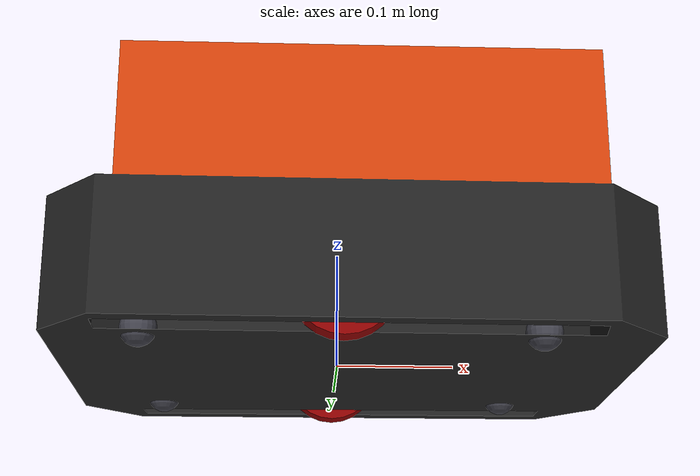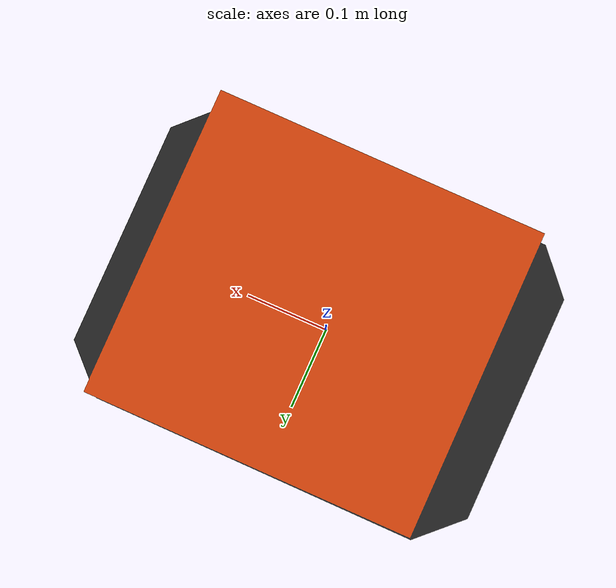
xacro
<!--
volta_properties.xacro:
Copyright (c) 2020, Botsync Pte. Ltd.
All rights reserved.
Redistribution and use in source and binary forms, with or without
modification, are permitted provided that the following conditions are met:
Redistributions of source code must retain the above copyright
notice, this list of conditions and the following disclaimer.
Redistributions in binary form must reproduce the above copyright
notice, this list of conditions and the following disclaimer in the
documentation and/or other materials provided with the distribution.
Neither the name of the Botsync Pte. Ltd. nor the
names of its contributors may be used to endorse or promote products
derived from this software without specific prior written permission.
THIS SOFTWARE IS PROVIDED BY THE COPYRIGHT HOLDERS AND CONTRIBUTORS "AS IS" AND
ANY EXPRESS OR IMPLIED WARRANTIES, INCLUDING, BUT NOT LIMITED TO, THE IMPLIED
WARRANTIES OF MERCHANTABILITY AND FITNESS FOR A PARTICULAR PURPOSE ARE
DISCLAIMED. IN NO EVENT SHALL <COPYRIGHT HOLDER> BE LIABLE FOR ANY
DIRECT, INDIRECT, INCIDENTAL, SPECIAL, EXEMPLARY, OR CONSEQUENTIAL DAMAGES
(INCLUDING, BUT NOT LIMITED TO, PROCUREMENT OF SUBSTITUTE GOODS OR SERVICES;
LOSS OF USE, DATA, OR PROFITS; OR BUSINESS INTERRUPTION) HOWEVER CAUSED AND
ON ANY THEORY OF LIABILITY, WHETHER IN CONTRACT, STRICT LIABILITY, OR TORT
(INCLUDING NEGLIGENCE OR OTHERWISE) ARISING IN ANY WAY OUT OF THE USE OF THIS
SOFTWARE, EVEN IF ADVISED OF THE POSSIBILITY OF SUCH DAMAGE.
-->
<?xml version="1.0"?>

<robot name="volta_robot" xmlns:xacro="https://ros.org/wiki/xacro">

  <link name="base_footprint"/>
  <xacro:include filename="$(find volta_description)/urdf/volta.urdf.xacro" />
  <xacro:volta_robot x="0.5" y="-0.5" yaw="0.0" joint_prefix="bot_1"/>
  <xacro:volta_robot x="0.5" y="0.5" yaw="0.0" joint_prefix="bot_2"/>

  <joint name="bot_1_base_joint" type="fixed">
    <parent link="base_footprint"/>
    <child link="bot_1/base_link"/>
  </joint>
  <joint name="bot_2_base_joint" type="fixed">
    <parent link="base_footprint"/>
    <child link="bot_2/base_link"/>
  </joint>

</robot>

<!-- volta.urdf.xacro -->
<robot name="volta_robot" xmlns:xacro="https://ros.org/wiki/xacro">

    <!-- xacro includes -->
    <xacro:include filename="$(find volta_description)/urdf/volta_properties.xacro"/>
    <xacro:include filename="$(find volta_description)/urdf/components/wheel_volta.urdf.xacro"/>
    <xacro:include filename="$(find volta_description)/urdf/components/caster_volta.urdf.xacro"/>

    <!-- xacro properties -->
    <xacro:property name="PI" value="3.14159"/>

    <!-- xacro args -->
    <xacro:arg name="robot_namespace" default="/" />
    <xacro:arg name="tf_pre" default=""/>
    <xacro:arg name="lidar_enabled" default="true"/>
    <xacro:arg name="rplidar_a3_enabled" default="true"/>
    <xacro:arg name="hokuyo_ust_10lx_enabled" default="false"/>
    <xacro:arg name="imu_enabled" default="true"/>
    <xacro:arg name="camera_enabled" default="true"/>
    <xacro:arg name="intel_d435i_enabled" default="true"/>
    <xacro:arg name="orbbec_astra_pro_enabled" default="false"/>

    <xacro:macro name="volta_robot" params="x y yaw joint_prefix">

        <!-- Footprint -->
        <link name="${joint_prefix}/footprint"/>

        <!-- Joint from footprint to base link(chassis) -->
        <joint name="${joint_prefix}/base_footprint_joint" type="fixed">
            <origin xyz="${x} ${y} ${base_underside_h+0.05}" rpy="0 0 ${yaw}" />
            <parent link="${joint_prefix}/base_link"/>
            <child link="${joint_prefix}/footprint"/>
        </joint>

        <!-- Chassis a.k.a base_link -->
        <link name="${joint_prefix}/base_link">
            <visual name="visual_base">
                <origin xyz="0 0 0" rpy="0 0 0" />
                <geometry>
                    <mesh filename="package://volta_description/meshes/opt4.dae"/>
                </geometry>
            </visual>

            <collision>
                <origin xyz="0 0 0" rpy="0 0 0" />
                <geometry>
                    <mesh filename="package://volta_description/meshes/opt4.dae"/>
                </geometry>
            </collision>
            <inertial>
		            <origin xyz ="0.00701 0.0000 0.08382"/>
                <mass value="${base_mass}"/>
                <inertia ixx="${base_ixx}" ixy="${base_ixy}" ixz="${base_ixz}" iyy="${base_iyy}" iyz="${base_iyz}" izz="${base_izz}"/>
            </inertial>
        </link>

        <!-- Wheel -->
        <xacro:volta_wheel wheel_prefix="${joint_prefix}/right">
            <origin xyz="0.0 ${-wheel_joint_y_abs+0.005} ${wheel_joint_z_abs}" rpy="0 0 0" />
        </xacro:volta_wheel>

        <xacro:volta_wheel wheel_prefix="${joint_prefix}/left">
            <origin xyz="0.0 ${wheel_joint_y_abs-0.005} ${wheel_joint_z_abs}" rpy="0 0 0" />
        </xacro:volta_wheel>

        <!-- Caster wheels -->
        <xacro:volta_caster caster_prefix="${joint_prefix}/front_left">
            <origin xyz="${caster_joint_x} ${caster_joint_y} ${caster_joint_z}" rpy="0 0 0" />
        </xacro:volta_caster>

        <xacro:volta_caster caster_prefix="${joint_prefix}/front_right">
            <origin xyz="${caster_joint_x} ${-caster_joint_y} ${caster_joint_z}" rpy="0 0 0" />
        </xacro:volta_caster>

        <xacro:volta_caster caster_prefix="${joint_prefix}/rear_right">
            <origin xyz="${-caster_joint_x} ${-caster_joint_y} ${caster_joint_z}" rpy="0 0 0" />
        </xacro:volta_caster>

        <xacro:volta_caster caster_prefix="${joint_prefix}/rear_left">
            <origin xyz="${-caster_joint_x} ${caster_joint_y} ${caster_joint_z}" rpy="0 0 0" />
        </xacro:volta_caster>

        <!-- Robot Gazebo tag -->
        <gazebo>
            <plugin name="gazebo_ros_control" filename="libgazebo_ros_control.so">
                <robotNamespace>$(arg robot_namespace)</robotNamespace>
                <robotSimType>gazebo_ros_control/DefaultRobotHWSim</robotSimType>
            </plugin>
        </gazebo>

    </xacro:macro>

</robot>

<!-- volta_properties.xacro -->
<robot name="volta_robot" xmlns:xacro="https://ros.org/wiki/xacro">

    <material name="blue">
        <color rgba="0 0 0.8 1"/>
    </material>
    <material name="silver">
       <color rgba="0.75 0.75 0.75 1"/>
    </material>
    <material name="grey">
       <color rgba="0.824 0.824 0.824 1"/>
    </material>
    <material name="black">
	     <color rgba="0.260 0.260 0.300 1"/>
    </material>
    <material name="orange">
	     <color rgba="0.999 0.547 0 1"/>
    </material>
    <material name="red">
	     <color rgba="0.543 0 0 1"/>
    </material>

    <xacro:property name="base_underside_h" value="0.035"/>
    <xacro:property name="base_mass" value="20.0000"/>
    <xacro:property name="base_l" value="0.4950"/>
    <xacro:property name="base_w" value="0.3650"/>
    <xacro:property name="base_h" value="0.21905"/>

    <!-- Volta R2 -->
    <xacro:property name="base_ixx" value="0.41802"/>
    <xacro:property name="base_ixy" value="0"/>
    <xacro:property name="base_ixz" value="0.00305"/>
    <xacro:property name="base_iyy" value="0.50105"/>
    <xacro:property name="base_iyz" value="0"/>
    <xacro:property name="base_izz" value="0.60276"/>

    <!-- Volta_R1 -->
    <xacro:property name="wheel_mass" value="0.5"/>
    <xacro:property name="wheel_width" value="0.020" />
    <xacro:property name="wheel_radius" value="0.0425" />
    <xacro:property name="wheel_joint_y_abs" value="0.1604" />
    <xacro:property name="wheel_joint_z_abs" value="0.02640" />
    <xacro:property name="wheel_ixx" value="0.0003"/>
    <xacro:property name="wheel_ixy" value="0.000"/>
    <xacro:property name="wheel_ixz" value="0.000"/>
    <xacro:property name="wheel_iyy" value="0.0005"/>
    <xacro:property name="wheel_iyz" value="0.000"/>
    <xacro:property name="wheel_izz" value="0.0003"/>

    <xacro:property name="caster_radius" value="0.015"/>
    <xacro:property name="caster_joint_x" value="0.15925"/>
    <xacro:property name="caster_joint_y" value="0.1210"/>
    <xacro:property name="caster_joint_z" value="-0.0008"/>

    <!-- base of lidar mopunt, x position in lidar_volta.urdf.xacro -->
    <xacro:property name="lidar_joint_y" value="0.0"/>
    <xacro:property name="lidar_joint_z" value="0.1140"/>

    <!-- base of camera mount -->
    <xacro:property name="camera_joint_x" value="0.2285"/>
    <xacro:property name="camera_joint_y" value="0.0000"/>
    <xacro:property name="camera_joint_z" value="0.1935"/>

    <xacro:property name="dummy_inertia" value="1e-09"/>

</robot>

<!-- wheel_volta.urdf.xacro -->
<robot name="volta_robot" xmlns:xacro="https://ros.org/wiki/xacro">
    <!-- Wheel Macro -->
    <xacro:macro name="volta_wheel" params="wheel_prefix *joint_origin">

        <!-- Wheel Link -->
        <link name="${wheel_prefix}_wheel">
            <visual>
                <origin xyz="0 0 0" rpy="1.570796327 0 0"/>
                <geometry>
                    <cylinder length="${wheel_width}" radius="${wheel_radius}"/>
                </geometry>
                <material name="red"/>
            </visual>
            <collision>
                <origin xyz="0 0 0" rpy="1.570796327 0 0"/>
                <geometry>
                    <cylinder length="${wheel_width}" radius="${wheel_radius}" />
                </geometry>
            </collision>
            <inertial>
                <mass value="${wheel_mass}" />
                <origin xyz="0 0 0" rpy="0 0 0" />
                <inertia  ixx="${wheel_ixx}" ixy="${wheel_ixy}" ixz="${wheel_ixz}" iyy="${wheel_iyy}" iyz="${wheel_iyz}" izz="${wheel_izz}" />
            </inertial>
        </link>

        <gazebo reference="${wheel_prefix}_wheel">
            <material>Gazebo/Red</material>
            <mu1 value="1400"/>
            <mu2 value="600"/>
            <kp value="3100000.0"></kp>
            <kd value="1.0"></kd>
            <fdir1 value="1 0 0"/>
        </gazebo>

        <!-- Wheel Joint -->
        <joint name="${joint_prefix}/${wheel_prefix}_wheel_joint" type="continuous">
            <parent link="${joint_prefix}/base_link"/>
            <child link="${wheel_prefix}_wheel" />
            <xacro:insert_block name="joint_origin" />
            <axis xyz="0 1 0" />
        </joint>

        <!-- Wheel Transmission -->
        <transmission name="${joint_prefix}/${wheel_prefix}_wheel_transmission" type="SimpleTransmission">
            <type>transmission_interface/SimpleTransmission</type>
            <joint name="${joint_prefix}/${wheel_prefix}_wheel_joint">
                <hardwareInterface>hardware_interface/VelocityJointInterface</hardwareInterface>
            </joint>
            <actuator name="${joint_prefix}/${wheel_prefix}_motor">
                <mechanicalReduction>1</mechanicalReduction>
            </actuator>
        </transmission>

    </xacro:macro>
</robot>

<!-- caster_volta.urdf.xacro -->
<robot name="volta_robot" xmlns:xacro="https://ros.org/wiki/xacro">
    <!-- Caster Macro -->
    <xacro:macro name="volta_caster" params="caster_prefix *caster_joint_origin">

        <!-- Caster Joint -->
        <link name="caster_${caster_prefix}_link">
            <visual>
                <origin rpy="0 0 0" xyz="0.0 0.0 0.0"/>
                <geometry>
                    <sphere radius="${caster_radius}"/>
                </geometry>
                <material name="black"/>
            </visual>
            <collision>
                <geometry>
                    <sphere radius="${caster_radius}"/>
                </geometry>
                <origin rpy="0 0 0" xyz="0 0 0"/>
            </collision>
            <inertial>
                <mass value="0.1"/>
                <origin xyz="0 0 0"/>
                <inertia ixx="0.0001" ixy="0.0" ixz="0.0" iyy="0.0001" iyz="0.0" izz="0.0001"/>
            </inertial>
        </link>

        <!-- Caster Joint -->
        <joint name="${joint_prefix}/caster_${caster_prefix}_joint" type="fixed">
            <parent link="${joint_prefix}/base_link"/>
            <child link="caster_${caster_prefix}_link"/>
            <xacro:insert_block name="caster_joint_origin" />
        </joint>

        <gazebo reference="caster_${caster_prefix}_link">
            <material>Gazebo/DarkGrey</material>
            <turnGravityOff>false</turnGravityOff>
            <mu1 value="0.1"/>
            <mu2 value="0.1"/>
            <kp value="10000000.0"></kp>
            <kd value="1.0"></kd>
        </gazebo>

    </xacro:macro>
</robot>
